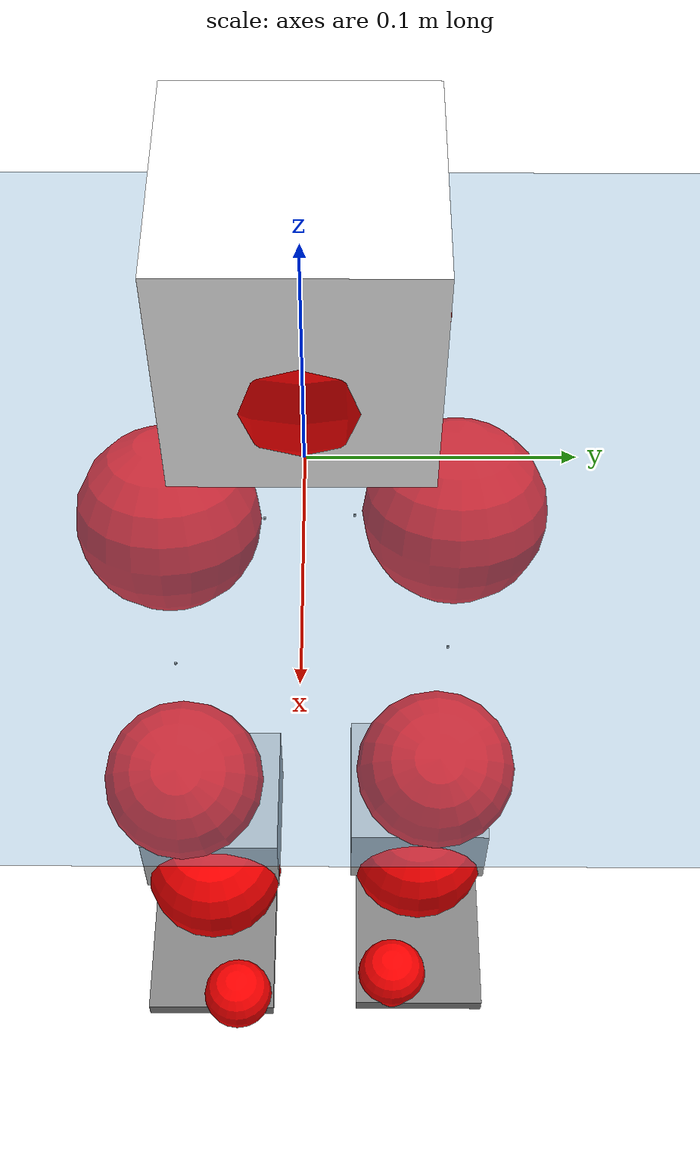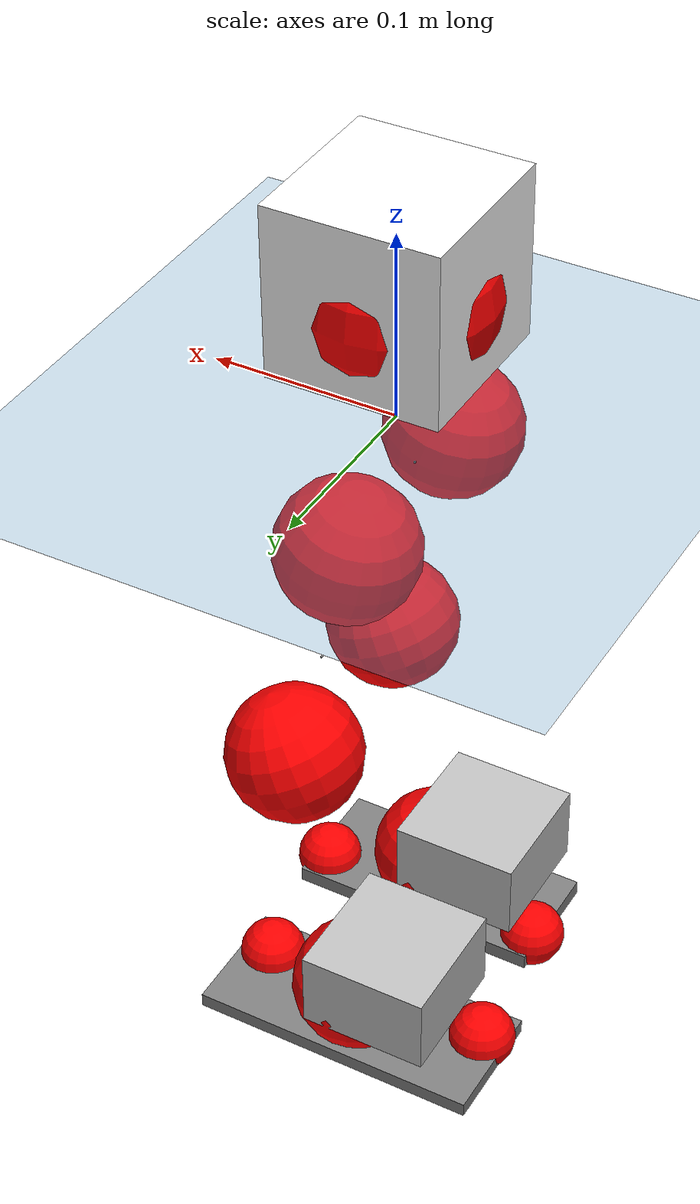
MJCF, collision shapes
<mujoco model="pi_12dof_release_v1">
  <compiler angle="radian" assetdir="assets" balanceinertia="true" inertiafromgeom="false"/>

  <option timestep="0.005" density="1.2" viscosity="2e-05"/>

  <size nkey="1"/>

  <visual>
    <quality shadowsize="8192"/>
    <map shadowclip="0.5"/>
  </visual>

  <default>
    <default class="/">
      <joint armature="0.01" damping="0.01" frictionloss="0.01"/>
      <geom contype="0" conaffinity="0" group="1" solref="-1000 -80"/>
      <site size="0.01 0.005 0.005" group="5"/>
      <general forcelimited="true" biastype="affine" gainprm="20" biasprm="0 -20 -0.5"/>
      <default class="foot">
        <geom size="0.0845 0.036 0.005" type="box" condim="6" group="4" priority="1" friction="0.9 0.2 0.2" solimp="0.015 1 0.005"/>
      </default>
      <default class="reward_collision_sphere">
        <geom group="5" rgba="1 0 0 1"/>
      </default>
    </default>
  </default>

  <asset>
    <texture type="skybox" colorspace="auto" name="//unnamed_texture_0" builtin="gradient" rgb1="0.95 0.95 0.95" rgb2="0.95 0.95 0.95" width="100" height="600"/>
    <texture type="2d" colorspace="auto" name="texplane" builtin="checker" rgb1="0.345 0.575 0.748" rgb2="0.345 0.575 0.748" markrgb="1 1 1" width="512" height="512"/>
    <material name="MatPlane" class="/" texture="texplane" texuniform="true" texrepeat="2 2" specular="0.9"/>
    <mesh name="baselink_1" class="/" file="baselink_1.STL"/>
    <mesh name="r_hip_pitch_link" class="/" file="r_hip_pitch_link.STL"/>
    <mesh name="r_hip_roll_link" class="/" file="r_hip_roll_link.STL"/>
    <mesh name="r_thigh_link" class="/" file="r_thigh_link.STL"/>
    <mesh name="r_calf_link" class="/" file="r_calf_link.STL"/>
    <mesh name="r_ankle_pitch_link" class="/" file="r_ankle_pitch_link.STL"/>
    <mesh name="r_ankle_roll_link" class="/" file="r_ankle_roll_link.STL"/>
    <mesh name="l_hip_pitch_link" class="/" file="l_hip_pitch_link.STL"/>
    <mesh name="l_hip_roll_link" class="/" file="l_hip_roll_link.STL"/>
    <mesh name="l_thigh_link" class="/" file="l_thigh_link.STL"/>
    <mesh name="l_calf_link" class="/" file="l_calf_link.STL"/>
    <mesh name="l_ankle_pitch_link" class="/" file="l_ankle_pitch_link.STL"/>
    <mesh name="l_ankle_roll_link" class="/" file="l_ankle_roll_link.STL"/>
  </asset>

  <worldbody>
    <geom name="floor" class="/" size="100 100 0.125" type="plane" group="0" material="MatPlane"/>
    <light name="toplight_shadow" class="/" pos="0 0 5" dir="0.0990148 0.0990148 -0.990148" type="directional" ambient="0.04 0.04 0.04" diffuse="0.55 0.55 0.55" specular="0.12 0.12 0.12"/>
    <light name="toplight_fill" class="/" pos="0 0 5" dir="0.0990148 0.0990148 -0.990148" type="directional" castshadow="false" ambient="0.04 0.04 0.04" diffuse="0.3 0.3 0.3" specular="0.08 0.08 0.08"/>
    <body name="trunk" pos="-0.00104145 0.000139593 -0.00283599" quat="1 1.82002e-05 0.000488113 -0.000188438">
      <inertial pos="-0.000487654 -0.00282658 0.0441251" quat="0.692042 0.00549606 0.00975709 0.721771" mass="1.64037" diaginertia="0.00889198 0.00173573 0.00534103"/>
      <joint name="//unnamed_joint_0" type="free"/>
      <geom name="//unnamed_geom_1" class="/" type="mesh" density="0" rgba="1 1 1 1" mesh="baselink_1"/>
      <geom name="//unnamed_geom_2" class="/" size="0.0454638 0.0454638 0.0454638" pos="0 0 0.0833822" type="box" rgba="1 1 1 1"/>
      <geom name="//unnamed_geom_3" class="reward_collision_sphere" size="0.0500102" pos="0 0 0.0729594"/>
      <site name="imu" class="/" pos="-0.00760172 0.00459053 0.0121078" size="0.00909276"/>
      <camera name="track" class="/" pos="0 -1.43049 0" quat="0.707107 0.707107 0 0" mode="trackcom"/>
      <camera name="ego_camera" class="/" pos="0.0727727 0 0.18761" quat="-0.5 -0.5 0.5 0.5"/>
      <body name="r_hip_pitch_link" pos="-0.000192654 -0.0165401 -0.0342914" quat="0.992291 -8.00152e-05 -0.123929 -0.00101249">
        <inertial pos="0.00328891 -0.0429366 0.000664475" quat="-0.0292638 0.700038 -0.0317021 0.712801" mass="0.271885" diaginertia="9.14346e-05 1.83578e-05 0.000104075"/>
        <joint name="r_hip_pitch_joint" class="/" pos="0 0 0" axis="0.0015839 -0.999979 0.00630126" stiffness="0.00462154" range="-1.74753 1.20835" armature="0.00818408" damping="0.00449339" frictionloss="0.00852481"/>
        <geom name="//unnamed_geom_4" class="/" type="mesh" density="0" rgba="0.75294 0.75294 0.75294 1" mesh="r_hip_pitch_link"/>
        <geom name="//unnamed_geom_5" class="/" size="0.000454638 0.000454638 0.000454638" type="box" rgba="0.75294 0.75294 0.75294 1"/>
        <body name="r_hip_roll_link" pos="-0.00176863 -0.037713 -0.00155105" quat="1 -0.00034191 1.05542e-05 -5.20568e-05">
          <inertial pos="0.00104726 -0.000232044 -0.0613981" quat="0.705238 -0.0807081 -0.0806554 0.699729" mass="0.298734" diaginertia="0.000276388 5.1546e-05 0.000157422"/>
          <joint name="r_hip_roll_joint" class="/" pos="0 0 0" axis="-0.999977 -0.00252975 0.00635794" range="-0.167036 0.522658" armature="0.0081495" damping="0.0110269" frictionloss="0.0103783"/>
          <geom name="//unnamed_geom_6" class="/" type="mesh" density="0" rgba="0.75294 0.75294 0.75294 1" mesh="r_hip_roll_link"/>
          <geom name="//unnamed_geom_7" class="/" size="0.000454638 0.000454638 0.000454638" type="box" rgba="0.75294 0.75294 0.75294 1"/>
          <geom name="//unnamed_geom_8" class="reward_collision_sphere" size="0.036371"/>
          <body name="r_thigh_link" pos="0.00284206 -0.00234588 -0.0738285" quat="0.999999 -0.000907487 -0.000688124 -0.000417902">
            <inertial pos="0.000482508 0.000553806 -0.049829" quat="0.736717 0.6762 -4.37786e-05 -0.00134399" mass="0.0825546" diaginertia="0.000104285 1.764e-05 6.9121e-05"/>
            <joint name="r_thigh_joint" class="/" pos="0 0 0" axis="0.0119729 -0.0112099 -0.999865" stiffness="0.00827173" range="-0.275364 0.613244" armature="0.00932141" damping="0.00399867" frictionloss="0.00876195"/>
            <geom name="//unnamed_geom_9" class="/" type="mesh" density="0" rgba="0.75294 0.75294 0.75294 1" mesh="r_thigh_link"/>
            <geom name="//unnamed_geom_10" class="/" size="0.000454638 0.000454638 0.000454638" type="box" rgba="0.75294 0.75294 0.75294 1"/>
            <body name="r_calf_link" pos="-0.00257079 -0.00139515 -0.0735963" quat="0.947735 0.000338812 0.319059 -0.000107278">
              <inertial pos="0.00209439 -0.000386453 -0.0734096" quat="0.999981 -0.00467905 -0.000545209 0.00408952" mass="0.631007" diaginertia="0.00305422 0.000699724 0.00022126"/>
              <joint name="r_calf_joint" class="/" pos="0 0 0" axis="-0.00989712 -0.999944 -0.00370059" stiffness="0.00103408" range="-1.6284 0.699062" armature="0.00780347" damping="0.0216181" frictionloss="0.00804729"/>
              <geom name="//unnamed_geom_11" class="/" type="mesh" density="0" rgba="0.75294 0.75294 0.75294 1" mesh="r_calf_link"/>
              <geom name="//unnamed_geom_12" class="/" size="0.000454638 0.000454638 0.000454638" type="box" rgba="0.75294 0.75294 0.75294 1"/>
              <geom name="//unnamed_geom_13" class="reward_collision_sphere" size="0.036371"/>
              <body name="r_ankle_pitch_link" pos="-0.000924458 0.00156504 -0.148242" quat="0.980052 9.58559e-05 -0.198741 0.000143885">
                <inertial pos="0.00470219 0.00179323 0.000855511" quat="-0.00302738 0.698962 -0.00208795 0.715149" mass="0.124411" diaginertia="0.000252011 4.14567e-05 0.000146059"/>
                <joint name="r_ankle_pitch_joint" class="/" pos="0 0 0" axis="-0.000760032 -0.999999 -0.00152703" range="-1.3022 0.492854" armature="0.00926257" damping="0" frictionloss="0.00918582"/>
                <geom name="//unnamed_geom_14" class="/" type="mesh" density="0" rgba="0.75294 0.75294 0.75294 1" mesh="r_ankle_pitch_link"/>
                <geom name="//unnamed_geom_15" class="/" size="0.0354618 0.036371 0.0227319" type="box" rgba="0.75294 0.75294 0.75294 1"/>
                <body name="r_ankle_roll_link" pos="0.076846 0.000748435 0.00143994" quat="1 5.01169e-05 -0.000154224 0.000376556">
                  <inertial pos="-0.0236769 0.000115253 -0.012946" quat="0.550928 0.439923 0.43712 0.558455" mass="0.39547" diaginertia="0.000956814 0.000187218 0.00034655"/>
                  <joint name="r_ankle_roll_joint" class="/" pos="0 0 0" axis="-0.999987 0.00501013 -0.000699652" range="-0.208494 0.187152" armature="0.00969756" damping="0" frictionloss="0.010243"/>
                  <geom name="//unnamed_geom_16" class="/" type="mesh" density="0" rgba="0.75294 0.75294 0.75294 1" mesh="r_ankle_roll_link"/>
                  <geom name="//unnamed_geom_17" class="/" type="mesh" rgba="0.75294 0.75294 0.75294 1" mesh="r_ankle_roll_link"/>
                  <geom name="right_foot" class="foot" size="0.0719694 0.0333963 0.00440488" pos="-0.0494855 0 -0.0458602"/>
                  <geom name="//unnamed_geom_19" class="reward_collision_sphere" size="0.036371" pos="-0.0485152 0 -0.0208455"/>
                  <geom name="//unnamed_geom_20" class="reward_collision_sphere" size="0.0181855" pos="0.0145545 0.0143049 -0.0416911"/>
                  <geom name="//unnamed_geom_21" class="reward_collision_sphere" size="0.0181855" pos="-0.116436 0.0143049 -0.0416911"/>
                  <site name="right_foot" class="foot" pos="-0.0494855 0 -0.0458602" size="0.00909276"/>
                </body>
              </body>
            </body>
          </body>
        </body>
      </body>
      <body name="l_hip_pitch_link" pos="-0.00204681 0.0185772 -0.0344362" quat="0.99221 -0.000207052 -0.124577 -0.000166671">
        <inertial pos="0.0031853 0.0407131 -0.000545015" quat="-0.027497 0.70465 0.0373143 0.708039" mass="0.293516" diaginertia="0.000105178 1.946e-05 0.000116272"/>
        <joint name="l_hip_pitch_joint" class="/" pos="0 0 0" axis="-0.00429183 0.999906 -0.0130022" range="-1.29475 1.7426" armature="0.00998224" damping="0.00631225" frictionloss="0.00934001"/>
        <geom name="//unnamed_geom_22" class="/" type="mesh" density="0" rgba="0.75294 0.75294 0.75294 1" mesh="l_hip_pitch_link"/>
        <geom name="//unnamed_geom_23" class="/" size="0.000454638 0.000454638 0.000454638" type="box" rgba="0.75294 0.75294 0.75294 1"/>
        <body name="l_hip_roll_link" pos="-0.00293738 0.0392399 -0.000107066" quat="1 -0.000143486 3.83431e-05 6.61175e-05">
          <inertial pos="-0.00110207 0.00262728 -0.0631509" quat="0.695941 -0.076701 -0.0798549 0.709512" mass="0.291643" diaginertia="0.000287651 5.02552e-05 0.000159827"/>
          <joint name="l_hip_roll_joint" class="/" pos="0 0 0" axis="-0.999957 0.00840706 -0.00387984" range="-0.468277 0.171253" armature="0.00877226" damping="0" frictionloss="0.0079933"/>
          <geom name="//unnamed_geom_24" class="/" type="mesh" density="0" rgba="0.75294 0.75294 0.75294 1" mesh="l_hip_roll_link"/>
          <geom name="//unnamed_geom_25" class="/" size="0.000454638 0.000454638 0.000454638" type="box" rgba="0.75294 0.75294 0.75294 1"/>
          <geom name="//unnamed_geom_26" class="reward_collision_sphere" size="0.036371"/>
          <body name="l_thigh_link" pos="-0.00307485 0.000916381 -0.0733075" quat="1 0.000656686 -0.000232906 0.000286467">
            <inertial pos="0.000225599 -0.00111034 -0.0484748" quat="0.674878 0.737911 0.00355529 -0.00387508" mass="0.0852737" diaginertia="0.000106978 1.76082e-05 7.03787e-05"/>
            <joint name="l_thigh_joint" class="/" pos="0 0 0" axis="-0.00526805 0.00528511 -0.999972" stiffness="0.00333308" range="-0.656451 0.351673" armature="0.0101491" damping="0" frictionloss="0.0103523"/>
            <geom name="//unnamed_geom_27" class="/" type="mesh" density="0" rgba="0.75294 0.75294 0.75294 1" mesh="l_thigh_link"/>
            <geom name="//unnamed_geom_28" class="/" size="0.000454638 0.000454638 0.000454638" type="box" rgba="0.75294 0.75294 0.75294 1"/>
            <body name="l_calf_link" pos="-0.000155091 -0.00190225 -0.0749188" quat="0.947772 -0.00119104 0.318945 0.000622749">
              <inertial pos="-0.00179622 0.00178607 -0.0703733" quat="0.999975 0.00495466 -0.0017714 0.00480384" mass="0.595305" diaginertia="0.00295909 0.000634391 0.00020374"/>
              <joint name="l_calf_joint" class="/" pos="0 0 0" axis="0.00715856 0.999974 0.001135" range="-0.621733 1.63156" armature="0.00802871" damping="0.00551828" frictionloss="0.00801246"/>
              <geom name="//unnamed_geom_29" class="/" type="mesh" density="0" rgba="0.75294 0.75294 0.75294 1" mesh="l_calf_link"/>
              <geom name="//unnamed_geom_30" class="/" size="0.000454638 0.000454638 0.000454638" type="box" rgba="0.75294 0.75294 0.75294 1"/>
              <geom name="//unnamed_geom_31" class="reward_collision_sphere" size="0.036371"/>
              <body name="l_ankle_pitch_link" pos="-0.00102883 -0.00136225 -0.144108" quat="0.980094 0.000101316 -0.198535 -0.0004781">
                <inertial pos="0.00762921 -0.000927422 -0.000697416" quat="-0.00178605 0.707727 0.0018695 0.706481" mass="0.127391" diaginertia="0.000252213 4.07019e-05 0.000144842"/>
                <joint name="l_ankle_pitch_joint" class="/" pos="0 0 0" axis="-0.00311664 0.999903 0.013553" range="-0.502936 1.31808" armature="0.00917825" damping="0" frictionloss="0.00953503"/>
                <geom name="//unnamed_geom_32" class="/" type="mesh" density="0" rgba="0.75294 0.75294 0.75294 1" mesh="l_ankle_pitch_link"/>
                <geom name="//unnamed_geom_33" class="/" size="0.0354618 0.036371 0.0227319" type="box" rgba="0.75294 0.75294 0.75294 1"/>
                <body name="l_ankle_roll_link" pos="0.0703365 0.000412112 0.000215144" quat="0.999999 0.000196524 0.000302229 -0.00105423">
                  <inertial pos="-0.025728 -0.000214722 -0.0154941" quat="0.555579 0.442049 0.434305 0.554349" mass="0.380175" diaginertia="0.000930245 0.000197018 0.000342213"/>
                  <joint name="l_ankle_roll_joint" class="/" pos="0 0 0" axis="-0.999985 0.00477209 0.00254687" range="-0.152686 0.15174" armature="0.00865049" damping="0.00506529" frictionloss="0.00826672"/>
                  <geom name="//unnamed_geom_34" class="/" type="mesh" density="0" rgba="0.75294 0.75294 0.75294 1" mesh="l_ankle_roll_link"/>
                  <geom name="//unnamed_geom_35" class="/" type="mesh" rgba="0.75294 0.75294 0.75294 1" mesh="l_ankle_roll_link"/>
                  <geom name="left_foot" class="foot" size="0.0810517 0.0337036 0.00416484" pos="-0.0494855 0 -0.0458602"/>
                  <geom name="//unnamed_geom_37" class="reward_collision_sphere" size="0.036371" pos="-0.0485152 0 -0.0208455"/>
                  <geom name="//unnamed_geom_38" class="reward_collision_sphere" size="0.0181855" pos="0.0145545 -0.0143049 -0.0416911"/>
                  <geom name="//unnamed_geom_39" class="reward_collision_sphere" size="0.0181855" pos="-0.116436 -0.0143049 -0.0416911"/>
                  <site name="left_foot" class="foot" pos="-0.0494855 0 -0.0458602" size="0.00909276"/>
                </body>
              </body>
            </body>
          </body>
        </body>
      </body>
    </body>
  </worldbody>

  <contact>
    <pair class="/" geom1="floor" geom2="right_foot" name="//unnamed_contact_1"/>
    <pair class="/" geom1="floor" geom2="left_foot" name="//unnamed_contact_0"/>
  </contact>

  <actuator>
    <general name="r_hip_pitch_joint" class="/" joint="r_hip_pitch_joint" forcerange="-20.1058 20.1058" gainprm="18.5702" biasprm="0 -18.5702 -0.480913"/>
    <general name="r_hip_roll_joint" class="/" joint="r_hip_roll_joint" forcerange="-17.2307 17.2307" gainprm="18.5702" biasprm="0 -18.5702 -0.480913"/>
    <general name="r_thigh_joint" class="/" joint="r_thigh_joint" forcerange="-21.1471 21.1471" gainprm="18.5702" biasprm="0 -18.5702 -0.480913"/>
    <general name="r_calf_joint" class="/" joint="r_calf_joint" forcerange="-19.0389 19.0389" gainprm="18.5702" biasprm="0 -18.5702 -0.480913"/>
    <general name="r_ankle_pitch_joint" class="/" joint="r_ankle_pitch_joint" forcerange="-17.1676 17.1676" gainprm="18.5702" biasprm="0 -18.5702 -0.480913"/>
    <general name="r_ankle_roll_joint" class="/" joint="r_ankle_roll_joint" forcerange="-19.218 19.218" gainprm="18.5702" biasprm="0 -18.5702 -0.480913"/>
    <general name="l_hip_pitch_joint" class="/" joint="l_hip_pitch_joint" forcerange="-19.6485 19.6485" gainprm="18.5702" biasprm="0 -18.5702 -0.480913"/>
    <general name="l_hip_roll_joint" class="/" joint="l_hip_roll_joint" forcerange="-17.2557 17.2557" gainprm="18.5702" biasprm="0 -18.5702 -0.480913"/>
    <general name="l_thigh_joint" class="/" joint="l_thigh_joint" forcerange="-18.9264 18.9264" gainprm="18.5702" biasprm="0 -18.5702 -0.480913"/>
    <general name="l_calf_joint" class="/" joint="l_calf_joint" forcerange="-17.125 17.125" gainprm="18.5702" biasprm="0 -18.5702 -0.480913"/>
    <general name="l_ankle_pitch_joint" class="/" joint="l_ankle_pitch_joint" forcerange="-20.5636 20.5636" gainprm="18.5702" biasprm="0 -18.5702 -0.480913"/>
    <general name="l_ankle_roll_joint" class="/" joint="l_ankle_roll_joint" forcerange="-17.3195 17.3195" gainprm="18.5702" biasprm="0 -18.5702 -0.480913"/>
  </actuator>

  <sensor>
    <gyro site="imu" name="imu_angular_velocity"/>
    <velocimeter site="imu" name="imu_linear_velocity"/>
    <framelinvel objtype="site" objname="left_foot" name="left_foot_global_linear_velocity"/>
    <framelinvel objtype="site" objname="right_foot" name="right_foot_global_linear_velocity"/>
  </sensor>

  <keyframe>
    <key name="home" qpos="0 0 0.291 1 0 0 0 0.4 0 0 -0.8 0.4 0 -0.4 0 0 0.8 -0.4 0"/>
  </keyframe>
</mujoco>
